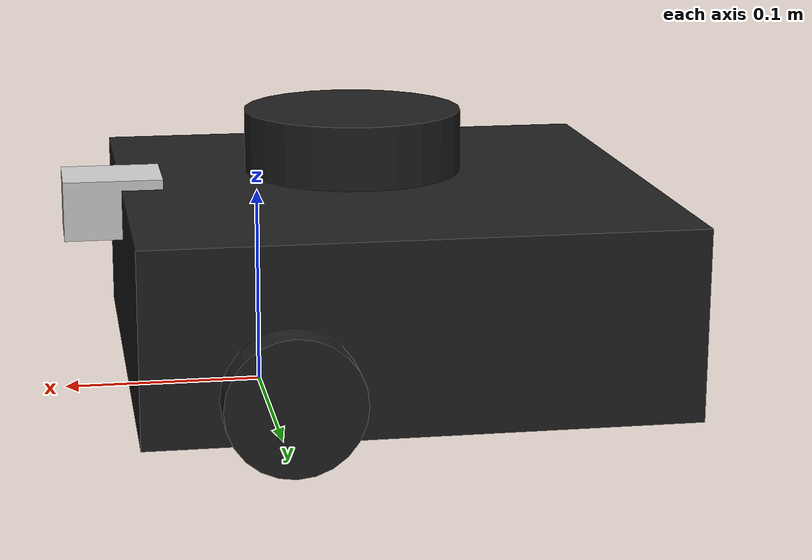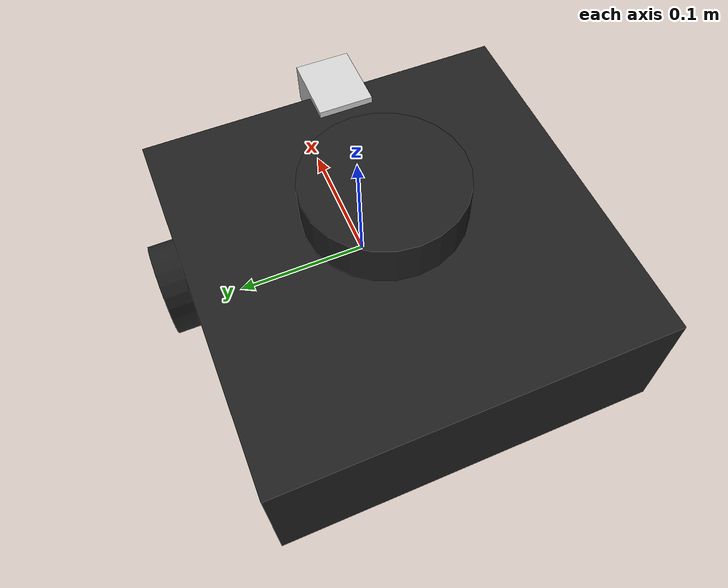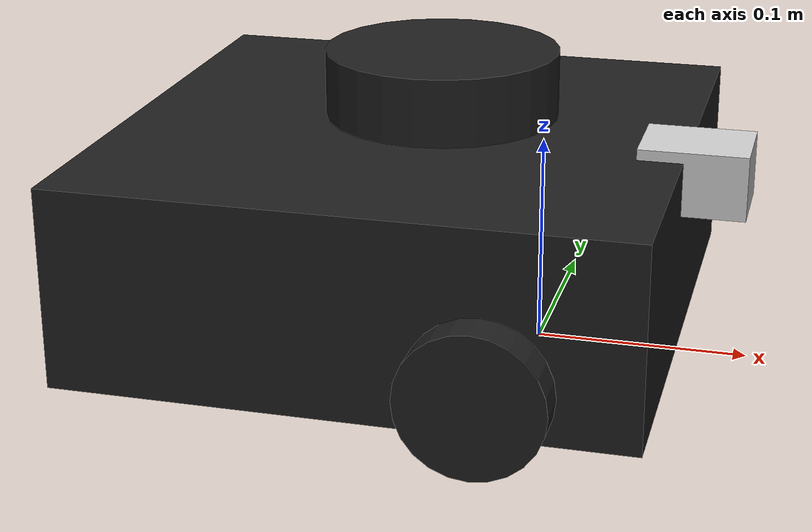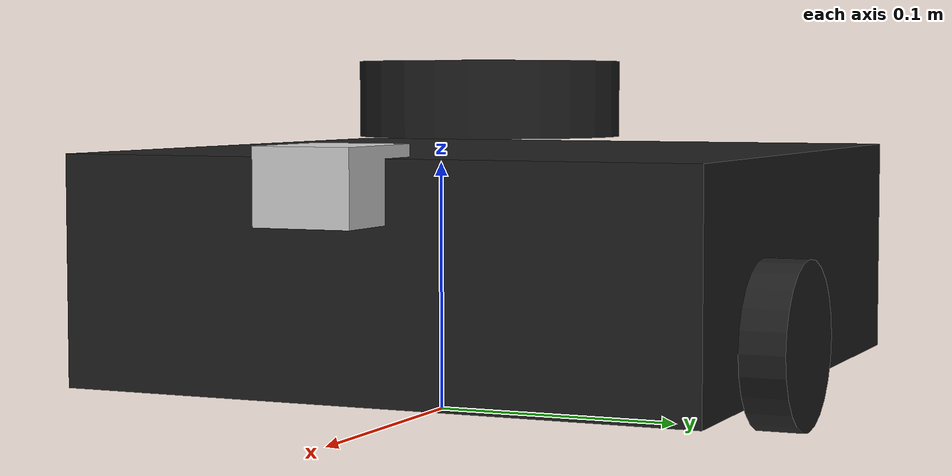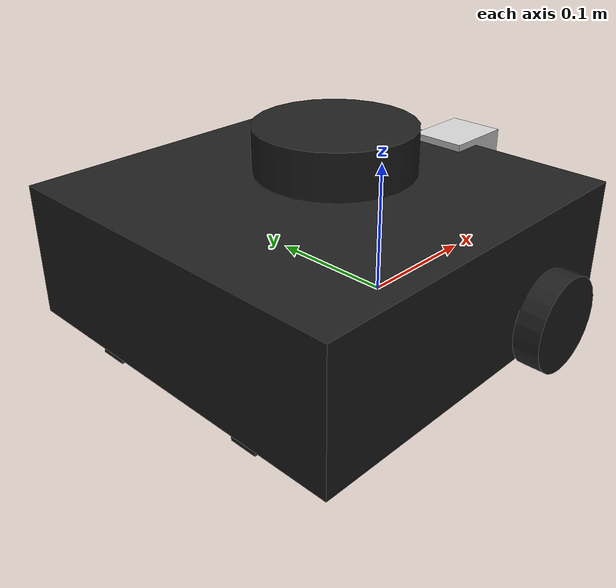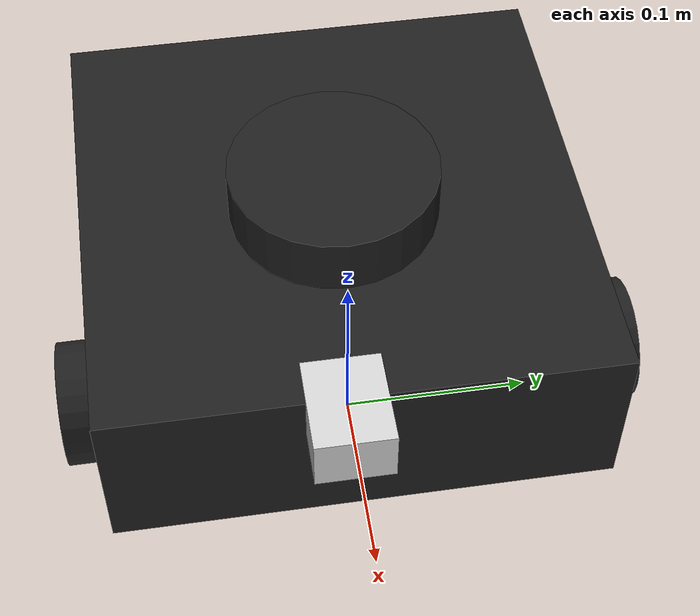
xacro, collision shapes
<?xml version="1.0" ?>
<robot name="turtlebot3_waffle_pi" xmlns:xacro="http://ros.org/wiki/xacro">
  <xacro:include filename="$(find turtlebot3_description)/urdf/common_properties.xacro"/>

  <xacro:arg name="laser_visual" default="false" />
  <xacro:arg name="imu_visual" default="false" />
  <xacro:arg name="body_color" default="dark" />
  <xacro:arg name="enable_rgbd_camera" default="true" />
  <xacro:arg name="frame_prefix" default="" />
  <xacro:property name="body_color_name" value="$(arg body_color)" />
  <xacro:property name="frame_prefix_name" value="$(arg frame_prefix)" />
  <xacro:property name="odom_frame_name" value="${frame_prefix_name + '/odom' if frame_prefix_name else 'odom'}" />
  <xacro:property name="base_footprint_frame_name" value="${frame_prefix_name + '/base_footprint' if frame_prefix_name else 'base_footprint'}" />
  <xacro:property name="base_scan_frame_name" value="${frame_prefix_name + '/base_scan' if frame_prefix_name else 'base_scan'}" />
  <xacro:property name="imu_frame_name" value="${frame_prefix_name + '/imu_link' if frame_prefix_name else 'imu_link'}" />
  <xacro:property name="camera_rgb_optical_frame_name" value="${frame_prefix_name + '/camera_rgb_optical_frame' if frame_prefix_name else 'camera_rgb_optical_frame'}" />
  <xacro:property name="body_rgba" value="0.12 0.12 0.12 1.0" />
  <xacro:property name="wheel_rgba" value="0.12 0.12 0.12 1.0" />
  <xacro:if value="${body_color_name == 'red'}">
    <xacro:property name="body_rgba" value="0.85 0.12 0.12 1.0" />
    <xacro:property name="wheel_rgba" value="0.85 0.12 0.12 1.0" />
  </xacro:if>
  <xacro:if value="${body_color_name == 'blue'}">
    <xacro:property name="body_rgba" value="0.12 0.18 0.85 1.0" />
    <xacro:property name="wheel_rgba" value="0.12 0.18 0.85 1.0" />
  </xacro:if>
  <xacro:if value="${body_color_name == 'green'}">
    <xacro:property name="body_rgba" value="0.12 0.72 0.20 1.0" />
    <xacro:property name="wheel_rgba" value="0.12 0.72 0.20 1.0" />
  </xacro:if>

  <link name="base_footprint"/>

  <joint name="base_joint" type="fixed">
    <parent link="base_footprint"/>
    <child link="base_link" />
    <origin xyz="0 0 0.010" rpy="0 0 0"/>
  </joint>

  <link name="base_link">
    <visual>
      <origin xyz="-0.064 0 0.0" rpy="0 0 0"/>
      <geometry>
        <mesh filename="package://turtlebot3_description/meshes/bases/waffle_pi_base.stl" scale="0.001 0.001 0.001"/>
      </geometry>
      <material name="body">
        <color rgba="${body_rgba}"/>
      </material>
    </visual>

    <collision>
      <origin xyz="-0.064 0 0.047" rpy="0 0 0"/>
      <geometry>
        <box size="0.266 0.266 0.094"/>
      </geometry>
    </collision>

    <inertial>
      <origin xyz="0 0 0" rpy="0 0 0"/>
      <mass value="1.3729096e+00"/>
      <inertia ixx="8.7002718e-03" ixy="-4.7576583e-05" ixz="1.1160499e-04"
               iyy="8.6195418e-03" iyz="-3.5422299e-06"
               izz="1.4612727e-02" />
    </inertial>
  </link>

  <joint name="wheel_left_joint" type="continuous">
    <parent link="base_link"/>
    <child link="wheel_left_link"/>
    <origin xyz="0.0 0.144 0.023" rpy="-1.57 0 0"/>
    <axis xyz="0 0 1"/>
  </joint>

  <link name="wheel_left_link">
    <visual>
      <origin xyz="0 0 0" rpy="1.57 0 0"/>
      <geometry>
        <mesh filename="package://turtlebot3_description/meshes/wheels/left_tire.stl" scale="0.001 0.001 0.001"/>
      </geometry>
      <material name="wheel">
        <color rgba="${wheel_rgba}"/>
      </material>
    </visual>

    <collision>
      <origin xyz="0 0 0" rpy="0 0 0"/>
      <geometry>
        <cylinder length="0.018" radius="0.033"/>
      </geometry>
    </collision>

    <inertial>
      <origin xyz="0 0 0" />
      <mass value="2.8498940e-02" />
      <inertia ixx="1.1175580e-05" ixy="-4.2369783e-11" ixz="-5.9381719e-09"
               iyy="1.1192413e-05" iyz="-1.4400107e-11"
               izz="2.0712558e-05" />
      </inertial>
  </link>

  <joint name="wheel_right_joint" type="continuous">
    <parent link="base_link"/>
    <child link="wheel_right_link"/>
    <origin xyz="0.0 -0.144 0.023" rpy="-1.57 0 0"/>
    <axis xyz="0 0 1"/>
  </joint>

  <link name="wheel_right_link">
    <visual>
      <origin xyz="0 0 0" rpy="1.57 0 0"/>
      <geometry>
        <mesh filename="package://turtlebot3_description/meshes/wheels/right_tire.stl" scale="0.001 0.001 0.001"/>
      </geometry>
      <material name="wheel">
        <color rgba="${wheel_rgba}"/>
      </material>
    </visual>

    <collision>
      <origin xyz="0 0 0" rpy="0 0 0"/>
      <geometry>
        <cylinder length="0.018" radius="0.033"/>
      </geometry>
    </collision>

    <inertial>
      <origin xyz="0 0 0" />
      <mass value="2.8498940e-02" />
      <inertia ixx="1.1175580e-05" ixy="-4.2369783e-11" ixz="-5.9381719e-09"
               iyy="1.1192413e-05" iyz="-1.4400107e-11"
               izz="2.0712558e-05" />
      </inertial>
  </link>

  <joint name="caster_back_right_joint" type="fixed">
    <parent link="base_link"/>
    <child link="caster_back_right_link"/>
    <origin xyz="-0.177 -0.064 -0.004" rpy="-1.57 0 0"/>
  </joint>

  <link name="caster_back_right_link">
    <collision>
      <origin xyz="0 0.001 0" rpy="0 0 0"/>
      <geometry>
        <box size="0.030 0.009 0.020"/>
      </geometry>
    </collision>

    <inertial>
      <origin xyz="0 0 0" />
      <mass value="0.005" />
      <inertia ixx="0.001" ixy="0.0" ixz="0.0"
               iyy="0.001" iyz="0.0"
               izz="0.001" />
    </inertial>
  </link>

  <joint name="caster_back_left_joint" type="fixed">
    <parent link="base_link"/>
    <child link="caster_back_left_link"/>
    <origin xyz="-0.177 0.064 -0.004" rpy="-1.57 0 0"/>
  </joint>

  <link name="caster_back_left_link">
    <collision>
      <origin xyz="0 0.001 0" rpy="0 0 0"/>
      <geometry>
        <box size="0.030 0.009 0.020"/>
      </geometry>
    </collision>

    <inertial>
      <origin xyz="0 0 0" />
      <mass value="0.005" />
      <inertia ixx="0.001" ixy="0.0" ixz="0.0"
               iyy="0.001" iyz="0.0"
               izz="0.001" />
    </inertial>
  </link>

  <joint name="imu_joint" type="fixed">
    <parent link="base_link"/>
    <child link="imu_link"/>
    <origin xyz="0.0 0 0.068" rpy="0 0 0"/>
  </joint>

  <link name="imu_link"/>

  <joint name="scan_joint" type="fixed">
    <parent link="base_link"/>
    <child link="base_scan"/>
    <origin xyz="-0.064 0 0.122" rpy="0 0 0"/>
  </joint>

  <link name="base_scan">
    <visual>
      <origin xyz="0 0 0.0" rpy="0 0 0"/>
      <geometry>
        <mesh filename="package://turtlebot3_description/meshes/sensors/lds.stl" scale="0.001 0.001 0.001"/>
      </geometry>
      <material name="sensor">
        <color rgba="${wheel_rgba}"/>
      </material>
    </visual>

    <collision>
      <origin xyz="0.015 0 -0.0065" rpy="0 0 0"/>
      <geometry>
        <cylinder length="0.0315" radius="0.055"/>
      </geometry>
    </collision>

    <inertial>
      <mass value="0.114" />
      <origin xyz="0 0 0" />
      <inertia ixx="0.001" ixy="0.0" ixz="0.0"
               iyy="0.001" iyz="0.0"
               izz="0.001" />
    </inertial>
  </link>

  <xacro:if value="$(arg enable_rgbd_camera)">
    <joint name="camera_joint" type="fixed">
      <origin xyz="0.073 -0.011 0.084" rpy="0 0 0"/>
      <parent link="base_link"/>
      <child link="camera_link"/>
    </joint>

    <link name="camera_link">
      <inertial>
        <origin xyz="0 0 0" rpy="0 0 0"/>
        <mass value="0.08"/>
        <inertia ixx="1.5e-05" ixy="0" ixz="0" iyy="1.5e-05" iyz="0" izz="1.5e-05"/>
      </inertial>
      <visual>
        <origin xyz="0 0 0" rpy="0 0 0"/>
        <geometry>
          <box size="0.05 0.04 0.03"/>
        </geometry>
        <material name="camera">
          <color rgba="0.82 0.82 0.82 1.0"/>
        </material>
      </visual>
      <collision>
        <origin xyz="0 0 0" rpy="0 0 0"/>
        <geometry>
          <box size="0.05 0.04 0.03"/>
        </geometry>
      </collision>
    </link>

    <joint name="camera_rgb_joint" type="fixed">
      <origin xyz="0.003 0.011 0.009" rpy="0 0 0"/>
      <parent link="camera_link"/>
      <child link="camera_rgb_frame"/>
    </joint>
    <link name="camera_rgb_frame"/>

    <joint name="camera_rgb_optical_joint" type="fixed">
      <origin xyz="0 0 0" rpy="-1.57 0 -1.57"/>
      <parent link="camera_rgb_frame"/>
      <child link="camera_rgb_optical_frame"/>
    </joint>
    <link name="camera_rgb_optical_frame"/>

    <joint name="camera_depth_joint" type="fixed">
      <origin xyz="0.003 0.011 0.009" rpy="0 0 0"/>
      <parent link="camera_link"/>
      <child link="camera_depth_frame"/>
    </joint>
    <link name="camera_depth_frame"/>

    <joint name="camera_depth_optical_joint" type="fixed">
      <origin xyz="0 0 0" rpy="-1.57 0 -1.57"/>
      <parent link="camera_depth_frame"/>
      <child link="camera_depth_optical_frame"/>
    </joint>
    <link name="camera_depth_optical_frame"/>
  </xacro:if>

  <xacro:if value="${body_color_name == 'blue'}">
    <gazebo reference="base_link">
      <material>Gazebo/Blue</material>
    </gazebo>
    <gazebo reference="wheel_left_link">
      <material>Gazebo/Blue</material>
    </gazebo>
    <gazebo reference="wheel_right_link">
      <material>Gazebo/Blue</material>
    </gazebo>
    <gazebo reference="base_scan">
      <material>Gazebo/Blue</material>
    </gazebo>
  </xacro:if>

  <xacro:if value="${body_color_name == 'green'}">
    <gazebo reference="base_link">
      <material>Gazebo/Green</material>
    </gazebo>
    <gazebo reference="wheel_left_link">
      <material>Gazebo/Green</material>
    </gazebo>
    <gazebo reference="wheel_right_link">
      <material>Gazebo/Green</material>
    </gazebo>
    <gazebo reference="base_scan">
      <material>Gazebo/Green</material>
    </gazebo>
  </xacro:if>

  <xacro:if value="${body_color_name == 'red'}">
    <gazebo reference="base_link">
      <material>Gazebo/Red</material>
    </gazebo>
    <gazebo reference="wheel_left_link">
      <material>Gazebo/Red</material>
    </gazebo>
    <gazebo reference="wheel_right_link">
      <material>Gazebo/Red</material>
    </gazebo>
    <gazebo reference="base_scan">
      <material>Gazebo/Red</material>
    </gazebo>
  </xacro:if>

  <xacro:if value="$(arg enable_rgbd_camera)">
    <gazebo reference="camera_rgb_frame">
      <sensor type="depth" name="cleanbot_rgbd_camera">
        <always_on>true</always_on>
        <update_rate>30</update_rate>
        <visualize>false</visualize>
        <camera name="cleanbot_camera">
          <horizontal_fov>1.3439</horizontal_fov>
          <image>
            <width>640</width>
            <height>480</height>
            <format>R8G8B8</format>
          </image>
          <depth_camera></depth_camera>
          <clip>
            <near>0.03</near>
            <far>100</far>
          </clip>
        </camera>
        <plugin name="cleanbot_rgbd_controller" filename="libgazebo_ros_openni_kinect.so">
          <alwaysOn>true</alwaysOn>
          <updateRate>30.0</updateRate>
          <cameraName>camera</cameraName>
          <frameName>${camera_rgb_optical_frame_name}</frameName>
          <imageTopicName>rgb/image_raw</imageTopicName>
          <cameraInfoTopicName>rgb/camera_info</cameraInfoTopicName>
          <depthImageTopicName>depth/image_raw</depthImageTopicName>
          <depthImageCameraInfoTopicName>depth/camera_info</depthImageCameraInfoTopicName>
          <pointCloudTopicName>depth/points</pointCloudTopicName>
          <pointCloudCutoff>0.4</pointCloudCutoff>
          <hackBaseline>0.07</hackBaseline>
          <CxPrime>0.0</CxPrime>
          <Cx>0.0</Cx>
          <Cy>0.0</Cy>
          <focalLength>0</focalLength>
        </plugin>
      </sensor>
    </gazebo>
  </xacro:if>

  <xacro:if value="${body_color_name == 'dark'}">
    <gazebo reference="base_link">
      <material>Gazebo/DarkGrey</material>
    </gazebo>
  </xacro:if>

  <gazebo reference="wheel_left_link">
    <mu1>0.1</mu1>
    <mu2>0.1</mu2>
    <kp>500000.0</kp>
    <kd>10.0</kd>
    <minDepth>0.001</minDepth>
    <maxVel>0.1</maxVel>
    <fdir1>1 0 0</fdir1>
    <material>Gazebo/FlatBlack</material>
  </gazebo>

  <gazebo reference="wheel_right_link">
    <mu1>0.1</mu1>
    <mu2>0.1</mu2>
    <kp>500000.0</kp>
    <kd>10.0</kd>
    <minDepth>0.001</minDepth>
    <maxVel>0.1</maxVel>
    <fdir1>1 0 0</fdir1>
    <material>Gazebo/FlatBlack</material>
  </gazebo>

  <gazebo reference="caster_back_right_link">
    <mu1>0.1</mu1>
    <mu2>0.1</mu2>
    <kp>1000000.0</kp>
    <kd>100.0</kd>
    <minDepth>0.001</minDepth>
    <maxVel>1.0</maxVel>
    <material>Gazebo/FlatBlack</material>
  </gazebo>

  <gazebo reference="caster_back_left_link">
    <mu1>0.1</mu1>
    <mu2>0.1</mu2>
    <kp>1000000.0</kp>
    <kd>100.0</kd>
    <minDepth>0.001</minDepth>
    <maxVel>1.0</maxVel>
    <material>Gazebo/FlatBlack</material>
  </gazebo>

  <gazebo reference="imu_link">
    <sensor type="imu" name="imu">
      <always_on>true</always_on>
      <visualize>$(arg imu_visual)</visualize>
    </sensor>
    <material>Gazebo/Grey</material>
  </gazebo>

  <gazebo>
    <plugin name="turtlebot3_waffle_pi_controller" filename="libgazebo_ros_diff_drive.so">
      <commandTopic>cmd_vel</commandTopic>
      <odometryTopic>odom</odometryTopic>
      <odometryFrame>${odom_frame_name}</odometryFrame>
      <odometrySource>world</odometrySource>
      <publishOdomTF>true</publishOdomTF>
      <robotBaseFrame>${base_footprint_frame_name}</robotBaseFrame>
      <publishWheelTF>false</publishWheelTF>
      <publishTf>true</publishTf>
      <publishWheelJointState>true</publishWheelJointState>
      <legacyMode>false</legacyMode>
      <updateRate>30</updateRate>
      <leftJoint>wheel_left_joint</leftJoint>
      <rightJoint>wheel_right_joint</rightJoint>
      <wheelSeparation>0.287</wheelSeparation>
      <wheelDiameter>0.066</wheelDiameter>
      <wheelAcceleration>1</wheelAcceleration>
      <wheelTorque>10</wheelTorque>
      <rosDebugLevel>na</rosDebugLevel>
    </plugin>
  </gazebo>

  <gazebo>
    <plugin name="imu_plugin" filename="libgazebo_ros_imu.so">
      <alwaysOn>true</alwaysOn>
      <bodyName>imu_link</bodyName>
      <frameName>${imu_frame_name}</frameName>
      <topicName>imu</topicName>
      <serviceName>imu_service</serviceName>
      <gaussianNoise>0.0</gaussianNoise>
      <updateRate>0</updateRate>
      <imu>
        <noise>
          <type>gaussian</type>
          <rate>
            <mean>0.0</mean>
            <stddev>2e-4</stddev>
            <bias_mean>0.0000075</bias_mean>
            <bias_stddev>0.0000008</bias_stddev>
          </rate>
          <accel>
            <mean>0.0</mean>
            <stddev>1.7e-2</stddev>
            <bias_mean>0.1</bias_mean>
            <bias_stddev>0.001</bias_stddev>
          </accel>
        </noise>
      </imu>
    </plugin>
  </gazebo>

  <gazebo reference="base_scan">
    <material>Gazebo/FlatBlack</material>
    <sensor type="ray" name="lds_lfcd_sensor">
      <pose>0 0 0 0 0 0</pose>
      <visualize>$(arg laser_visual)</visualize>
      <update_rate>5</update_rate>
      <ray>
        <scan>
          <horizontal>
            <samples>360</samples>
            <resolution>1</resolution>
            <min_angle>0.0</min_angle>
            <max_angle>6.28319</max_angle>
          </horizontal>
        </scan>
        <range>
          <min>0.120</min>
          <max>3.5</max>
          <resolution>0.015</resolution>
        </range>
        <noise>
          <type>gaussian</type>
          <mean>0.0</mean>
          <stddev>0.01</stddev>
        </noise>
      </ray>
      <plugin name="gazebo_ros_lds_lfcd_controller" filename="libgazebo_ros_laser.so">
        <topicName>scan</topicName>
        <frameName>${base_scan_frame_name}</frameName>
      </plugin>
    </sensor>
  </gazebo>

</robot>
